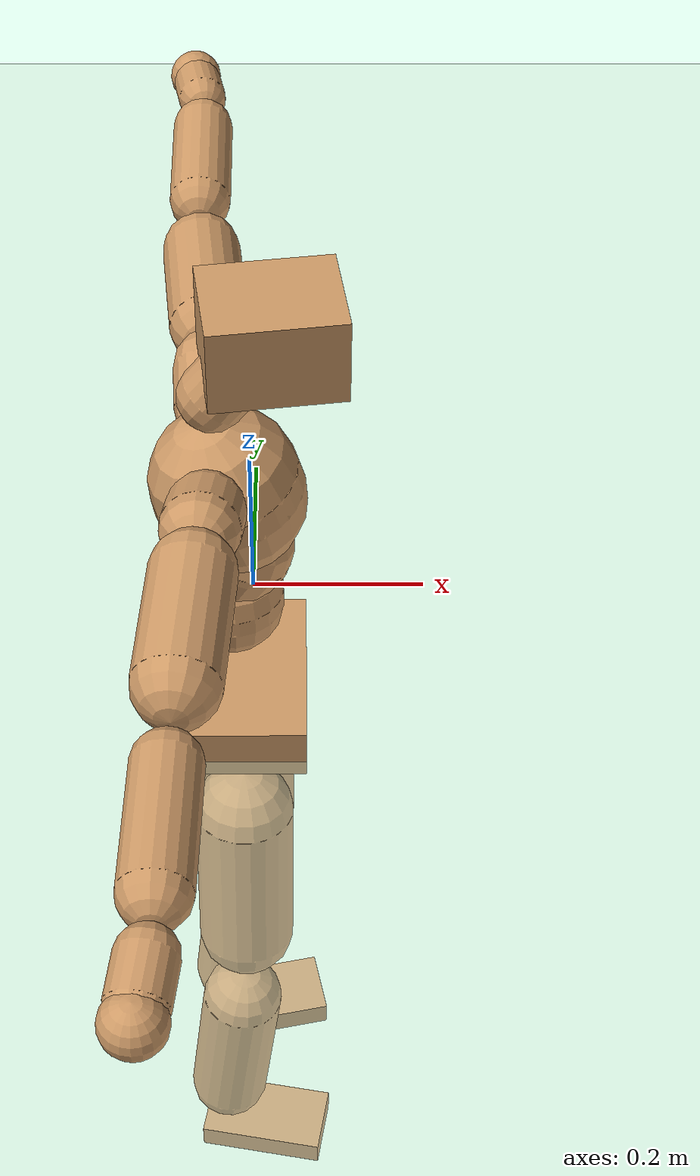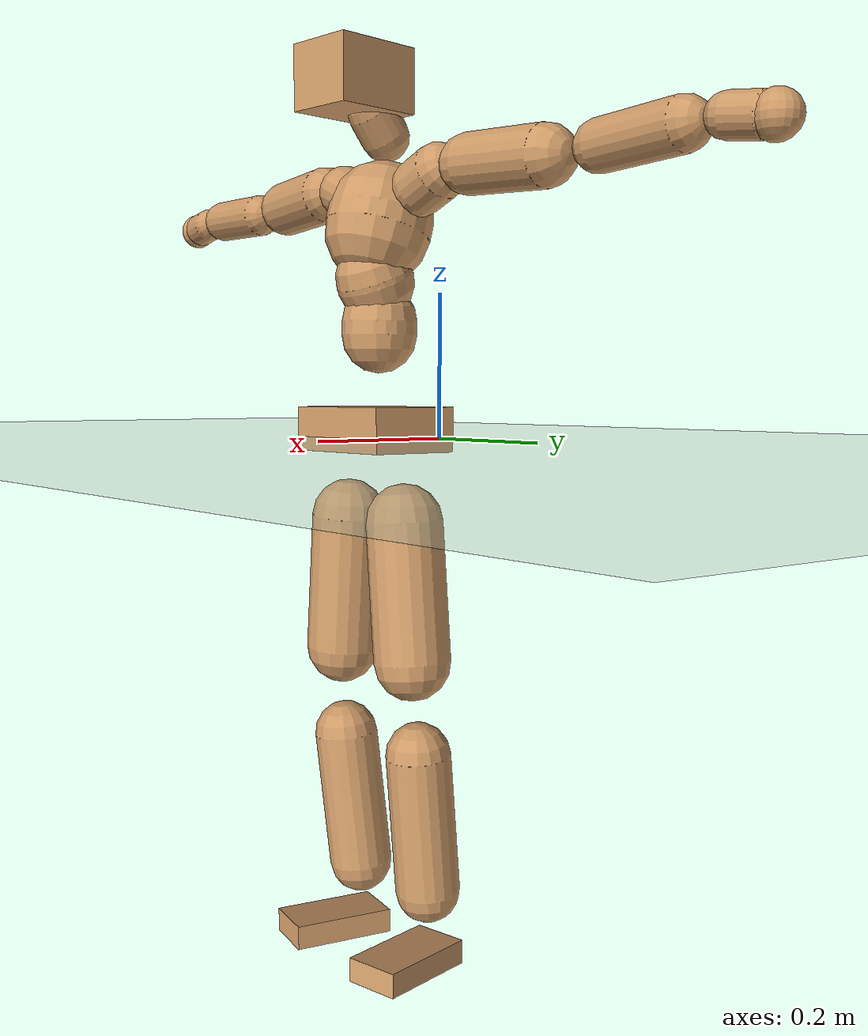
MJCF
<mujoco model="humanoid">
  <compiler coordinate="local" angle="radian"/>
  <default>
    <joint damping="0.0" armature="0.01" stiffness="0.0" limited="true"/>
    <geom conaffinity="1" condim="3" contype="7" margin="0.001" rgba="0.8 0.6 .4 1"/>
  </default>
  <asset>
    <texture type="skybox" builtin="gradient" rgb1=".4 .5 .6" rgb2="0 0 0" width="100" height="100"/>
    <texture builtin="flat" height="1278" mark="cross" markrgb="1 1 1" name="texgeom" random="0.01" rgb1="0.8 0.6 0.4" rgb2="0.8 0.6 0.4" type="cube" width="127"/>
    <texture builtin="checker" height="100" name="texplane" rgb1="0 0 0" rgb2="0.8 0.8 0.8" type="2d" width="100"/>
    <material name="MatPlane" reflectance="0.5" shininess="1" specular="1" texrepeat="60 60" texture="texplane"/>
    <material name="geom" texture="texgeom" texuniform="true"/>
  </asset>
  <worldbody>
    <light cutoff="100" diffuse="1 1 1" dir="-0 0 -1.3" directional="true" exponent="1" pos="0 0 1.3" specular=".1 .1 .1"/>
    <geom conaffinity="1" condim="3" name="floor" pos="0 0 0" rgba="0.8 0.9 0.8 1" size="100 100 .2" type="plane" material="MatPlane"/>
    <body name="Pelvis" pos="-0.0012 -0.1664 0.0209">
      <freejoint name="Pelvis"/>
      <geom type="box" contype="1" conaffinity="1" density="500" pos="-0.0050 -0.0000 -0.0110" size="0.0692 0.1016 0.0329" quat="1.0000 0.0000 0.0000 0.0025" name="Pelvis"/>
      <body name="L_Hip" pos="-0.0089 0.064 -0.0774">
        <joint name="L_Hip_x" type="hinge" pos="0 0 0" axis="1 0 0" stiffness="800" damping="80" armature="0.02" range="-180.0000 180.0000"/>
        <joint name="L_Hip_y" type="hinge" pos="0 0 0" axis="0 1 0" stiffness="800" damping="80" armature="0.02" range="-180.0000 180.0000"/>
        <joint name="L_Hip_z" type="hinge" pos="0 0 0" axis="0 0 1" stiffness="800" damping="80" armature="0.02" range="-180.0000 180.0000"/>
        <geom type="capsule" contype="1" conaffinity="1" density="500" fromto="-0.0002 0.0062 -0.0684 -0.0007 0.0250 -0.2735" size="0.0569" name="L_Hip"/>
        <body name="L_Knee" pos="-0.0008 0.0312 -0.3419">
          <joint name="L_Knee_x" type="hinge" pos="0 0 0" axis="1 0 0" stiffness="800" damping="80" armature="0.02" range="-180.0000 180.0000"/>
          <joint name="L_Knee_y" type="hinge" pos="0 0 0" axis="0 1 0" stiffness="800" damping="80" armature="0.02" range="-180.0000 180.0000"/>
          <joint name="L_Knee_z" type="hinge" pos="0 0 0" axis="0 0 1" stiffness="800" damping="80" armature="0.02" range="-180.0000 180.0000"/>
          <geom type="capsule" contype="1" conaffinity="1" density="500" fromto="-0.0076 -0.0021 -0.0709 -0.0304 -0.0083 -0.2834" size="0.0485" name="L_Knee"/>
          <body name="L_Ankle" pos="-0.038 -0.0103 -0.3543">
            <joint name="L_Ankle_x" type="hinge" pos="0 0 0" axis="1 0 0" stiffness="800" damping="80" armature="0.02" range="-180.0000 180.0000"/>
            <joint name="L_Ankle_y" type="hinge" pos="0 0 0" axis="0 1 0" stiffness="800" damping="80" armature="0.02" range="-180.0000 180.0000"/>
            <joint name="L_Ankle_z" type="hinge" pos="0 0 0" axis="0 0 1" stiffness="800" damping="80" armature="0.02" range="-180.0000 180.0000"/>
            <geom type="box" contype="1" conaffinity="1" density="500" pos="0.0535 0.0113 -0.0251" size="0.0782 0.0423 0.018" quat="0.9946 0.0000 0.0000 0.1036" name="L_Ankle"/>
            <body name="L_Toe" pos="0.107 0.0225 -0.0502">
              <joint name="L_Toe_x" type="hinge" pos="0 0 0" axis="1 0 0" stiffness="500" damping="50" armature="0.02" range="-180.0000 180.0000"/>
              <joint name="L_Toe_y" type="hinge" pos="0 0 0" axis="0 1 0" stiffness="500" damping="50" armature="0.02" range="-180.0000 180.0000"/>
              <joint name="L_Toe_z" type="hinge" pos="0 0 0" axis="0 0 1" stiffness="500" damping="50" armature="0.02" range="-180.0000 180.0000"/>
              <geom type="box" contype="1" conaffinity="1" density="500" pos="0.0000 0.0000 0.0257" size="0.0008 0.0021 0.0009" quat="0.9939 0.0000 0.0000 0.1104" name="L_Toe"/>
            </body>
          </body>
        </body>
      </body>
      <body name="R_Hip" pos="-0.0062 -0.0632 -0.076">
        <joint name="R_Hip_x" type="hinge" pos="0 0 0" axis="1 0 0" stiffness="800" damping="80" armature="0.02" range="-180.0000 180.0000"/>
        <joint name="R_Hip_y" type="hinge" pos="0 0 0" axis="0 1 0" stiffness="800" damping="80" armature="0.02" range="-180.0000 180.0000"/>
        <joint name="R_Hip_z" type="hinge" pos="0 0 0" axis="0 0 1" stiffness="800" damping="80" armature="0.02" range="-180.0000 180.0000"/>
        <geom type="capsule" contype="1" conaffinity="1" density="500" fromto="-0.0006 -0.0069 -0.0694 -0.0024 -0.0275 -0.2777" size="0.0563" name="R_Hip"/>
        <body name="R_Knee" pos="-0.0031 -0.0344 -0.3471">
          <joint name="R_Knee_x" type="hinge" pos="0 0 0" axis="1 0 0" stiffness="800" damping="80" armature="0.02" range="-180.0000 180.0000"/>
          <joint name="R_Knee_y" type="hinge" pos="0 0 0" axis="0 1 0" stiffness="800" damping="80" armature="0.02" range="-180.0000 180.0000"/>
          <joint name="R_Knee_z" type="hinge" pos="0 0 0" axis="0 0 1" stiffness="800" damping="80" armature="0.02" range="-180.0000 180.0000"/>
          <geom type="capsule" contype="1" conaffinity="1" density="500" fromto="-0.0074 0.0025 -0.0710 -0.0298 0.0098 -0.2840" size="0.0489" name="R_Knee"/>
          <body name="R_Ankle" pos="-0.0372 0.0123 -0.355">
            <joint name="R_Ankle_x" type="hinge" pos="0 0 0" axis="1 0 0" stiffness="800" damping="80" armature="0.02" range="-180.0000 180.0000"/>
            <joint name="R_Ankle_y" type="hinge" pos="0 0 0" axis="0 1 0" stiffness="800" damping="80" armature="0.02" range="-180.0000 180.0000"/>
            <joint name="R_Ankle_z" type="hinge" pos="0 0 0" axis="0 0 1" stiffness="800" damping="80" armature="0.02" range="-180.0000 180.0000"/>
            <geom type="box" contype="1" conaffinity="1" density="500" pos="0.0548 -0.0098 -0.0210" size="0.0784 0.0421 0.0181" quat="0.9961 0.0000 0.0000 -0.0883" name="R_Ankle"/>
            <body name="R_Toe" pos="0.1097 -0.0196 -0.0421">
              <joint name="R_Toe_x" type="hinge" pos="0 0 0" axis="1 0 0" stiffness="500" damping="50" armature="0.02" range="-180.0000 180.0000"/>
              <joint name="R_Toe_y" type="hinge" pos="0 0 0" axis="0 1 0" stiffness="500" damping="50" armature="0.02" range="-180.0000 180.0000"/>
              <joint name="R_Toe_z" type="hinge" pos="0 0 0" axis="0 0 1" stiffness="500" damping="50" armature="0.02" range="-180.0000 180.0000"/>
              <geom type="box" contype="1" conaffinity="1" density="500" pos="0.0000 0.0000 0.0219" size="0.0008 0.0021 0.0009" quat="0.9970 0.0000 0.0000 -0.0780" name="R_Toe"/>
            </body>
          </body>
        </body>
      </body>
      <body name="Torso" pos="-0.0152 -0.001 0.0875">
        <joint name="Torso_x" type="hinge" pos="0 0 0" axis="1 0 0" stiffness="1000" damping="100" armature="0.02" range="-180.0000 180.0000"/>
        <joint name="Torso_y" type="hinge" pos="0 0 0" axis="0 1 0" stiffness="1000" damping="100" armature="0.02" range="-180.0000 180.0000"/>
        <joint name="Torso_z" type="hinge" pos="0 0 0" axis="0 0 1" stiffness="1000" damping="100" armature="0.02" range="-180.0000 180.0000"/>
        <geom type="capsule" contype="1" conaffinity="1" density="500" fromto="-0.0002 0.0011 0.0605 -0.0001 0.0007 0.0403" size="0.0561" name="Torso"/>
        <body name="Spine" pos="-0.0003 0.0018 0.1008">
          <joint name="Spine_x" type="hinge" pos="0 0 0" axis="1 0 0" stiffness="1000" damping="100" armature="0.02" range="-180.0000 180.0000"/>
          <joint name="Spine_y" type="hinge" pos="0 0 0" axis="0 1 0" stiffness="1000" damping="100" armature="0.02" range="-180.0000 180.0000"/>
          <joint name="Spine_z" type="hinge" pos="0 0 0" axis="0 0 1" stiffness="1000" damping="100" armature="0.02" range="-180.0000 180.0000"/>
          <geom type="capsule" contype="1" conaffinity="1" density="500" fromto="0.0109 0.0012 0.0240 0.0073 0.0008 0.0160" size="0.0579" name="Spine"/>
          <body name="Chest" pos="0.0182 0.002 0.04">
            <joint name="Chest_x" type="hinge" pos="0 0 0" axis="1 0 0" stiffness="1000" damping="100" armature="0.02" range="-180.0000 180.0000"/>
            <joint name="Chest_y" type="hinge" pos="0 0 0" axis="0 1 0" stiffness="1000" damping="100" armature="0.02" range="-180.0000 180.0000"/>
            <joint name="Chest_z" type="hinge" pos="0 0 0" axis="0 0 1" stiffness="1000" damping="100" armature="0.02" range="-180.0000 180.0000"/>
            <geom type="capsule" contype="1" conaffinity="1" density="500" fromto="-0.0213 -0.0014 0.0757 -0.0142 -0.0010 0.0505" size="0.0787" name="Chest"/>
            <body name="Neck" pos="-0.0389 -0.0041 0.1776">
              <joint name="Neck_x" type="hinge" pos="0 0 0" axis="1 0 0" stiffness="500" damping="50" armature="0.02" range="-180.0000 180.0000"/>
              <joint name="Neck_y" type="hinge" pos="0 0 0" axis="0 1 0" stiffness="500" damping="50" armature="0.02" range="-180.0000 180.0000"/>
              <joint name="Neck_z" type="hinge" pos="0 0 0" axis="0 0 1" stiffness="500" damping="50" armature="0.02" range="-180.0000 180.0000"/>
              <geom type="capsule" contype="1" conaffinity="1" density="500" fromto="0.0090 0.0009 0.0111 0.0359 0.0035 0.0443" size="0.0358" name="Neck"/>
              <body name="Head" pos="0.0449 0.0044 0.0553">
                <joint name="Head_x" type="hinge" pos="0 0 0" axis="1 0 0" stiffness="500" damping="50" armature="0.02" range="-180.0000 180.0000"/>
                <joint name="Head_y" type="hinge" pos="0 0 0" axis="0 1 0" stiffness="500" damping="50" armature="0.02" range="-180.0000 180.0000"/>
                <joint name="Head_z" type="hinge" pos="0 0 0" axis="0 0 1" stiffness="500" damping="50" armature="0.02" range="-180.0000 180.0000"/>
                <geom type="box" contype="1" conaffinity="1" density="500" pos="0.0234 0.0032 0.0287" size="0.0687 0.0531 0.0471" quat="0.9977 0.0000 0.0000 0.0675" name="Head"/>
              </body>
            </body>
            <body name="L_Thorax" pos="-0.0323 0.0597 0.1006">
              <joint name="L_Thorax_x" type="hinge" pos="0 0 0" axis="1 0 0" stiffness="500" damping="50" armature="0.02" range="-180.0000 180.0000"/>
              <joint name="L_Thorax_y" type="hinge" pos="0 0 0" axis="0 1 0" stiffness="500" damping="50" armature="0.02" range="-180.0000 180.0000"/>
              <joint name="L_Thorax_z" type="hinge" pos="0 0 0" axis="0 0 1" stiffness="500" damping="50" armature="0.02" range="-180.0000 180.0000"/>
              <geom type="capsule" contype="1" conaffinity="1" density="500" fromto="-0.0007 0.0145 0.0057 -0.0028 0.0580 0.0229" size="0.0415" name="L_Thorax"/>
              <body name="L_Shoulder" pos="-0.0035 0.0725 0.0286">
                <joint name="L_Shoulder_x" type="hinge" pos="0 0 0" axis="1 0 0" stiffness="500" damping="50" armature="0.02" range="-720.0000 720.0000"/>
                <joint name="L_Shoulder_y" type="hinge" pos="0 0 0" axis="0 1 0" stiffness="500" damping="50" armature="0.02" range="-720.0000 720.0000"/>
                <joint name="L_Shoulder_z" type="hinge" pos="0 0 0" axis="0 0 1" stiffness="500" damping="50" armature="0.02" range="-720.0000 720.0000"/>
                <geom type="capsule" contype="1" conaffinity="1" density="500" fromto="-0.0045 0.0465 -0.0023 -0.0180 0.1860 -0.0092" size="0.0425" name="L_Shoulder"/>
                <body name="L_Elbow" pos="-0.0225 0.2325 -0.0114">
                  <joint name="L_Elbow_x" type="hinge" pos="0 0 0" axis="1 0 0" stiffness="500" damping="50" armature="0.02" range="-720.0000 720.0000"/>
                  <joint name="L_Elbow_y" type="hinge" pos="0 0 0" axis="0 1 0" stiffness="500" damping="50" armature="0.02" range="-720.0000 720.0000"/>
                  <joint name="L_Elbow_z" type="hinge" pos="0 0 0" axis="0 0 1" stiffness="500" damping="50" armature="0.02" range="-720.0000 720.0000"/>
                  <geom type="capsule" contype="1" conaffinity="1" density="500" fromto="-0.0004 0.0453 0.0017 -0.0015 0.1813 0.0068" size="0.0343" name="L_Elbow"/>
                  <body name="L_Wrist" pos="-0.0019 0.2266 0.0085">
                    <joint name="L_Wrist_x" type="hinge" pos="0 0 0" axis="1 0 0" stiffness="300" damping="30" armature="0.02" range="-180.0000 180.0000"/>
                    <joint name="L_Wrist_y" type="hinge" pos="0 0 0" axis="0 1 0" stiffness="300" damping="30" armature="0.02" range="-180.0000 180.0000"/>
                    <joint name="L_Wrist_z" type="hinge" pos="0 0 0" axis="0 0 1" stiffness="300" damping="30" armature="0.02" range="-180.0000 180.0000"/>
                    <geom type="capsule" contype="1" conaffinity="1" density="500" fromto="-0.0025 0.0149 -0.0019 -0.0101 0.0597 -0.0074" size="0.0277" name="L_Wrist"/>
                    <body name="L_Hand" pos="-0.0127 0.0746 -0.0093">
                      <joint name="L_Hand_x" type="hinge" pos="0 0 0" axis="1 0 0" stiffness="300" damping="30" armature="0.02" range="-180.0000 180.0000"/>
                      <joint name="L_Hand_y" type="hinge" pos="0 0 0" axis="0 1 0" stiffness="300" damping="30" armature="0.02" range="-180.0000 180.0000"/>
                      <joint name="L_Hand_z" type="hinge" pos="0 0 0" axis="0 0 1" stiffness="300" damping="30" armature="0.02" range="-180.0000 180.0000"/>
                      <geom type="sphere" contype="1" conaffinity="1" density="500" size="0.0300" pos="0.0000 0.0000 0.0000" name="L_Hand"/>
                    </body>
                  </body>
                </body>
              </body>
            </body>
            <body name="R_Thorax" pos="-0.0352 -0.0628 0.1005">
              <joint name="R_Thorax_x" type="hinge" pos="0 0 0" axis="1 0 0" stiffness="500" damping="50" armature="0.02" range="-180.0000 180.0000"/>
              <joint name="R_Thorax_y" type="hinge" pos="0 0 0" axis="0 1 0" stiffness="500" damping="50" armature="0.02" range="-180.0000 180.0000"/>
              <joint name="R_Thorax_z" type="hinge" pos="0 0 0" axis="0 0 1" stiffness="500" damping="50" armature="0.02" range="-180.0000 180.0000"/>
              <geom type="capsule" contype="1" conaffinity="1" density="500" fromto="-0.0011 -0.0150 0.0058 -0.0046 -0.0600 0.0232" size="0.0407" name="R_Thorax"/>
              <body name="R_Shoulder" pos="-0.0057 -0.075 0.0291">
                <joint name="R_Shoulder_x" type="hinge" pos="0 0 0" axis="1 0 0" stiffness="500" damping="50" armature="0.02" range="-720.0000 720.0000"/>
                <joint name="R_Shoulder_y" type="hinge" pos="0 0 0" axis="0 1 0" stiffness="500" damping="50" armature="0.02" range="-720.0000 720.0000"/>
                <joint name="R_Shoulder_z" type="hinge" pos="0 0 0" axis="0 0 1" stiffness="500" damping="50" armature="0.02" range="-720.0000 720.0000"/>
                <geom type="capsule" contype="1" conaffinity="1" density="500" fromto="-0.0033 -0.0452 -0.0020 -0.0132 -0.1806 -0.0081" size="0.0434" name="R_Shoulder"/>
                <body name="R_Elbow" pos="-0.0165 -0.2258 -0.0101">
                  <joint name="R_Elbow_x" type="hinge" pos="0 0 0" axis="1 0 0" stiffness="500" damping="50" armature="0.02" range="-720.0000 720.0000"/>
                  <joint name="R_Elbow_y" type="hinge" pos="0 0 0" axis="0 1 0" stiffness="500" damping="50" armature="0.02" range="-720.0000 720.0000"/>
                  <joint name="R_Elbow_z" type="hinge" pos="0 0 0" axis="0 0 1" stiffness="500" damping="50" armature="0.02" range="-720.0000 720.0000"/>
                  <geom type="capsule" contype="1" conaffinity="1" density="500" fromto="-0.0011 -0.0463 0.0013 -0.0045 -0.1854 0.0050" size="0.0341" name="R_Elbow"/>
                  <body name="R_Wrist" pos="-0.0057 -0.2317 0.0063">
                    <joint name="R_Wrist_x" type="hinge" pos="0 0 0" axis="1 0 0" stiffness="300" damping="30" armature="0.02" range="-180.0000 180.0000"/>
                    <joint name="R_Wrist_y" type="hinge" pos="0 0 0" axis="0 1 0" stiffness="300" damping="30" armature="0.02" range="-180.0000 180.0000"/>
                    <joint name="R_Wrist_z" type="hinge" pos="0 0 0" axis="0 0 1" stiffness="300" damping="30" armature="0.02" range="-180.0000 180.0000"/>
                    <geom type="capsule" contype="1" conaffinity="1" density="500" fromto="-0.0020 -0.0150 -0.0014 -0.0079 -0.0602 -0.0056" size="0.0286" name="R_Wrist"/>
                    <body name="R_Hand" pos="-0.0098 -0.0752 -0.007">
                      <joint name="R_Hand_x" type="hinge" pos="0 0 0" axis="1 0 0" stiffness="300" damping="30" armature="0.02" range="-180.0000 180.0000"/>
                      <joint name="R_Hand_y" type="hinge" pos="0 0 0" axis="0 1 0" stiffness="300" damping="30" armature="0.02" range="-180.0000 180.0000"/>
                      <joint name="R_Hand_z" type="hinge" pos="0 0 0" axis="0 0 1" stiffness="300" damping="30" armature="0.02" range="-180.0000 180.0000"/>
                      <geom type="sphere" contype="1" conaffinity="1" density="500" size="0.0302" pos="0.0000 0.0000 0.0000" name="R_Hand"/>
                    </body>
                  </body>
                </body>
              </body>
            </body>
          </body>
        </body>
      </body>
    </body>
  </worldbody>
  <actuator>
    <motor name="L_Hip_x" joint="L_Hip_x" gear="500"/>
    <motor name="L_Hip_y" joint="L_Hip_y" gear="500"/>
    <motor name="L_Hip_z" joint="L_Hip_z" gear="500"/>
    <motor name="L_Knee_x" joint="L_Knee_x" gear="500"/>
    <motor name="L_Knee_y" joint="L_Knee_y" gear="500"/>
    <motor name="L_Knee_z" joint="L_Knee_z" gear="500"/>
    <motor name="L_Ankle_x" joint="L_Ankle_x" gear="500"/>
    <motor name="L_Ankle_y" joint="L_Ankle_y" gear="500"/>
    <motor name="L_Ankle_z" joint="L_Ankle_z" gear="500"/>
    <motor name="L_Toe_x" joint="L_Toe_x" gear="500"/>
    <motor name="L_Toe_y" joint="L_Toe_y" gear="500"/>
    <motor name="L_Toe_z" joint="L_Toe_z" gear="500"/>
    <motor name="R_Hip_x" joint="R_Hip_x" gear="500"/>
    <motor name="R_Hip_y" joint="R_Hip_y" gear="500"/>
    <motor name="R_Hip_z" joint="R_Hip_z" gear="500"/>
    <motor name="R_Knee_x" joint="R_Knee_x" gear="500"/>
    <motor name="R_Knee_y" joint="R_Knee_y" gear="500"/>
    <motor name="R_Knee_z" joint="R_Knee_z" gear="500"/>
    <motor name="R_Ankle_x" joint="R_Ankle_x" gear="500"/>
    <motor name="R_Ankle_y" joint="R_Ankle_y" gear="500"/>
    <motor name="R_Ankle_z" joint="R_Ankle_z" gear="500"/>
    <motor name="R_Toe_x" joint="R_Toe_x" gear="500"/>
    <motor name="R_Toe_y" joint="R_Toe_y" gear="500"/>
    <motor name="R_Toe_z" joint="R_Toe_z" gear="500"/>
    <motor name="Torso_x" joint="Torso_x" gear="500"/>
    <motor name="Torso_y" joint="Torso_y" gear="500"/>
    <motor name="Torso_z" joint="Torso_z" gear="500"/>
    <motor name="Spine_x" joint="Spine_x" gear="500"/>
    <motor name="Spine_y" joint="Spine_y" gear="500"/>
    <motor name="Spine_z" joint="Spine_z" gear="500"/>
    <motor name="Chest_x" joint="Chest_x" gear="500"/>
    <motor name="Chest_y" joint="Chest_y" gear="500"/>
    <motor name="Chest_z" joint="Chest_z" gear="500"/>
    <motor name="Neck_x" joint="Neck_x" gear="500"/>
    <motor name="Neck_y" joint="Neck_y" gear="500"/>
    <motor name="Neck_z" joint="Neck_z" gear="500"/>
    <motor name="Head_x" joint="Head_x" gear="500"/>
    <motor name="Head_y" joint="Head_y" gear="500"/>
    <motor name="Head_z" joint="Head_z" gear="500"/>
    <motor name="L_Thorax_x" joint="L_Thorax_x" gear="500"/>
    <motor name="L_Thorax_y" joint="L_Thorax_y" gear="500"/>
    <motor name="L_Thorax_z" joint="L_Thorax_z" gear="500"/>
    <motor name="L_Shoulder_x" joint="L_Shoulder_x" gear="500"/>
    <motor name="L_Shoulder_y" joint="L_Shoulder_y" gear="500"/>
    <motor name="L_Shoulder_z" joint="L_Shoulder_z" gear="500"/>
    <motor name="L_Elbow_x" joint="L_Elbow_x" gear="500"/>
    <motor name="L_Elbow_y" joint="L_Elbow_y" gear="500"/>
    <motor name="L_Elbow_z" joint="L_Elbow_z" gear="500"/>
    <motor name="L_Wrist_x" joint="L_Wrist_x" gear="500"/>
    <motor name="L_Wrist_y" joint="L_Wrist_y" gear="500"/>
    <motor name="L_Wrist_z" joint="L_Wrist_z" gear="500"/>
    <motor name="L_Hand_x" joint="L_Hand_x" gear="500"/>
    <motor name="L_Hand_y" joint="L_Hand_y" gear="500"/>
    <motor name="L_Hand_z" joint="L_Hand_z" gear="500"/>
    <motor name="R_Thorax_x" joint="R_Thorax_x" gear="500"/>
    <motor name="R_Thorax_y" joint="R_Thorax_y" gear="500"/>
    <motor name="R_Thorax_z" joint="R_Thorax_z" gear="500"/>
    <motor name="R_Shoulder_x" joint="R_Shoulder_x" gear="500"/>
    <motor name="R_Shoulder_y" joint="R_Shoulder_y" gear="500"/>
    <motor name="R_Shoulder_z" joint="R_Shoulder_z" gear="500"/>
    <motor name="R_Elbow_x" joint="R_Elbow_x" gear="500"/>
    <motor name="R_Elbow_y" joint="R_Elbow_y" gear="500"/>
    <motor name="R_Elbow_z" joint="R_Elbow_z" gear="500"/>
    <motor name="R_Wrist_x" joint="R_Wrist_x" gear="500"/>
    <motor name="R_Wrist_y" joint="R_Wrist_y" gear="500"/>
    <motor name="R_Wrist_z" joint="R_Wrist_z" gear="500"/>
    <motor name="R_Hand_x" joint="R_Hand_x" gear="500"/>
    <motor name="R_Hand_y" joint="R_Hand_y" gear="500"/>
    <motor name="R_Hand_z" joint="R_Hand_z" gear="500"/>
  </actuator>
  <contact>
    <exclude body1="Torso" body2="Chest"/>
    <exclude body1="Head" body2="Chest"/>
    <exclude body1="R_Knee" body2="R_Toe"/>
    <exclude body1="R_Knee" body2="L_Ankle"/>
    <exclude body1="R_Knee" body2="L_Toe"/>
    <exclude body1="L_Knee" body2="L_Toe"/>
    <exclude body1="L_Knee" body2="R_Ankle"/>
    <exclude body1="L_Knee" body2="R_Toe"/>
    <exclude body1="L_Shoulder" body2="Chest"/>
    <exclude body1="R_Shoulder" body2="Chest"/>
  </contact>
  <sensor/>
  <size njmax="700" nconmax="700"/>
</mujoco>
